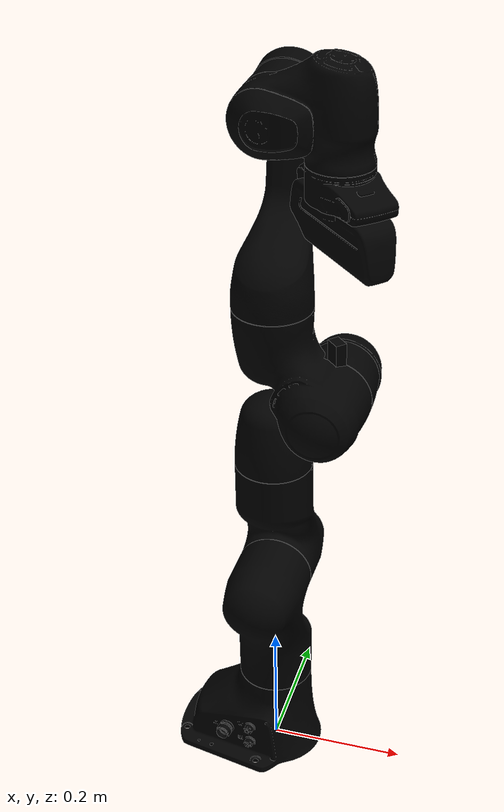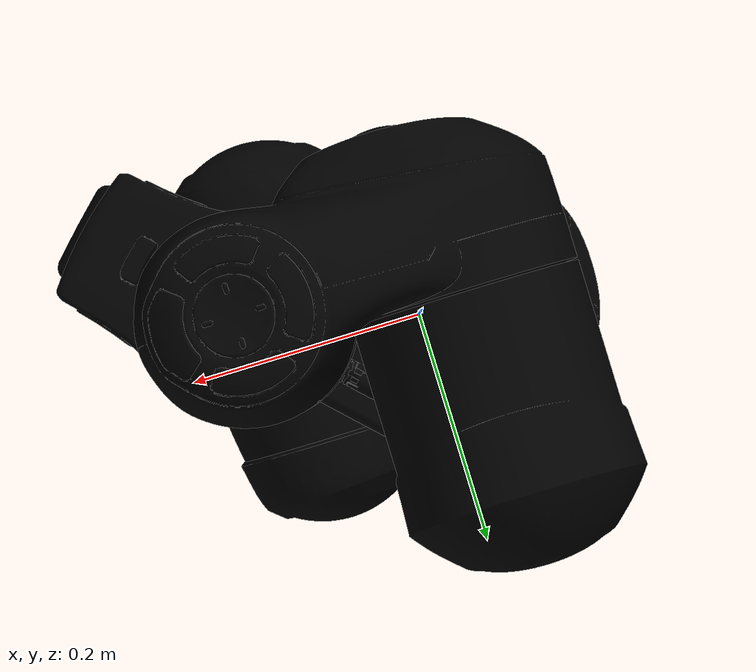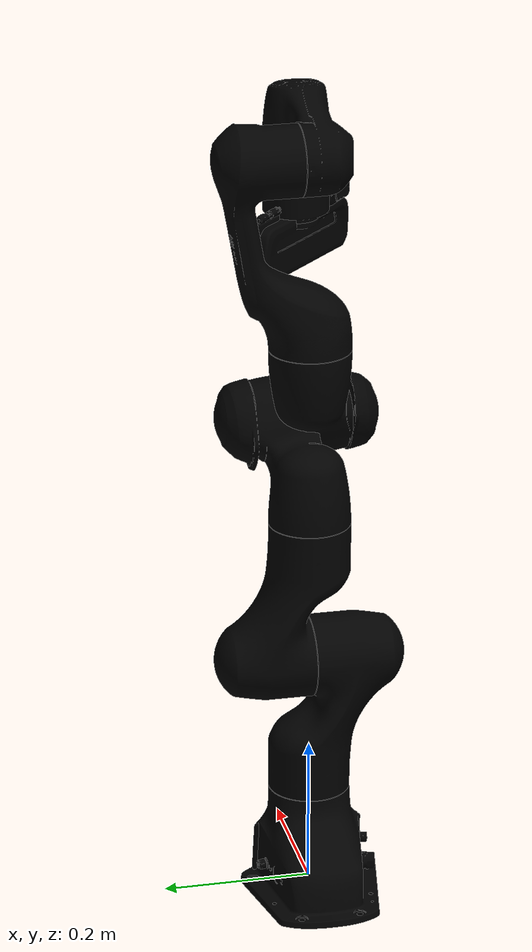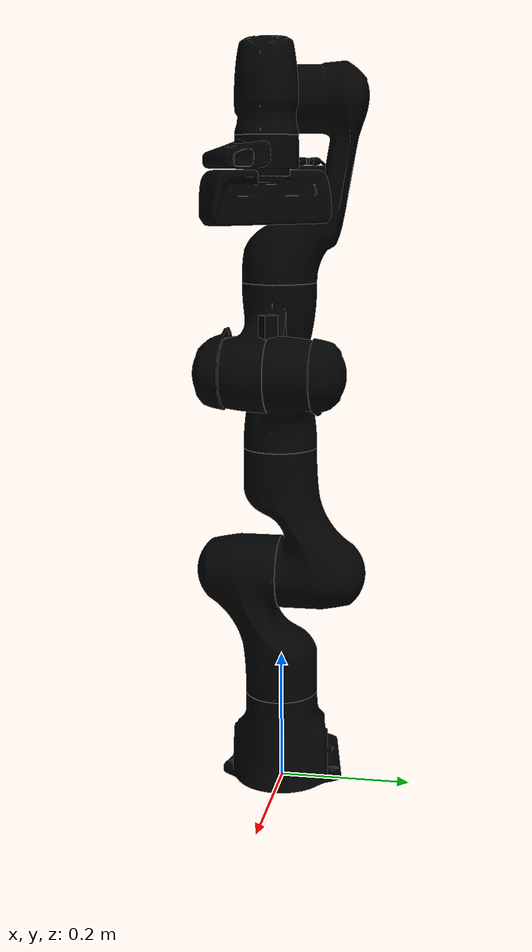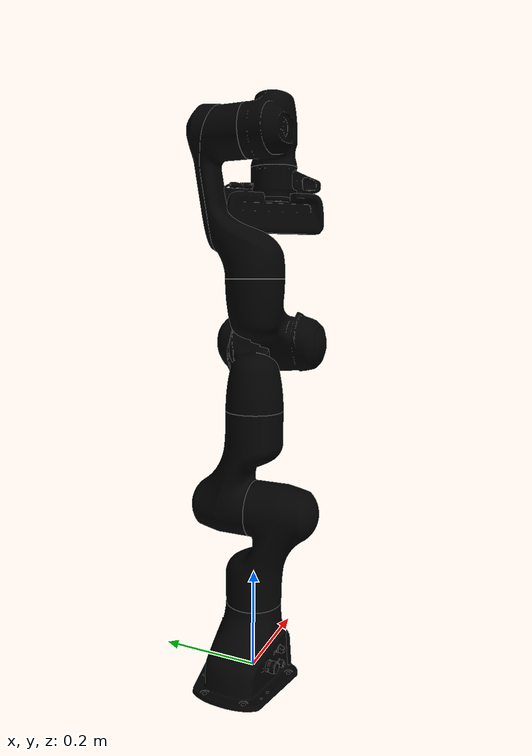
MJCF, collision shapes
<mujoco model="franka_panda_gripper">
  <compiler angle="radian" autolimits="true" inertiafromgeom="true"/>

  <default>
    <default class="visual">
      <geom type="mesh" contype="0" conaffinity="0" density="0" group="1" rgba="0.75 0.75 0.75 1"/>
    </default>
    <default class="collision">
      <geom group="3" rgba="0 0 0 0"/>
    </default>
  </default>

  <asset>
    <mesh name="link0_visual" file="../meshes/visual/link0.obj"/>
    <mesh name="link1_visual" file="../meshes/visual/link1.obj"/>
    <mesh name="link2_visual" file="../meshes/visual/link2.obj"/>
    <mesh name="link3_visual" file="../meshes/visual/link3.obj"/>
    <mesh name="link4_visual" file="../meshes/visual/link4.obj"/>
    <mesh name="link5_visual" file="../meshes/visual/link5.obj"/>
    <mesh name="link6_visual" file="../meshes/visual/link6.obj"/>
    <mesh name="link7_visual" file="../meshes/visual/link7.obj"/>
    <mesh name="hand_visual" file="../meshes/visual/hand.obj"/>

    <mesh name="link0_collision" file="../../../urdf/franka_description/meshes/collision/link0.obj"/>
    <mesh name="link1_collision" file="../../../urdf/franka_description/meshes/collision/link1.obj"/>
    <mesh name="link2_collision" file="../../../urdf/franka_description/meshes/collision/link2.obj"/>
    <mesh name="link3_collision" file="../../../urdf/franka_description/meshes/collision/link3.obj"/>
    <mesh name="link4_collision" file="../../../urdf/franka_description/meshes/collision/link4.obj"/>
    <mesh name="link5_collision" file="../../../urdf/franka_description/meshes/collision/link5.obj"/>
    <mesh name="link6_collision" file="../../../urdf/franka_description/meshes/collision/link6.obj"/>
    <mesh name="link7_collision" file="../../../urdf/franka_description/meshes/collision/link7.obj"/>
    <mesh name="hand_collision" file="../../../urdf/franka_description/meshes/collision/hand.obj"/>
    <mesh name="soft_gripper_finger" file="../../../umi/soft_gripper_finger.stl"/>
  </asset>

  <worldbody>
    <light
      name="key_light"
      pos="-0.2 -0.2 1.6"
      dir="0 0 -1"
      directional="true"
      diffuse="0.85 0.85 0.85"
      specular="0.25 0.25 0.25"
      ambient="0.15 0.15 0.15"
      castshadow="false"
    />
    <body name="panda_link0">
      <geom name="panda_link0_visual" class="visual" mesh="link0_visual"/>
      <geom name="panda_link0_collision" class="collision" mesh="link0_collision"/>

      <body name="panda_link1" pos="0 0 0.333">
        <joint name="panda_joint1" axis="0 0 1" range="-2.8973 2.8973" actuatorfrcrange="-87 87" damping="10"/>
        <geom name="panda_link1_visual" class="visual" mesh="link1_visual"/>
        <geom name="panda_link1_collision" class="collision" mesh="link1_collision"/>

        <body name="panda_link2" quat="0.707107 -0.707107 0 0">
          <joint name="panda_joint2" axis="0 0 1" range="-1.7628 1.7628" actuatorfrcrange="-87 87" damping="10"/>
          <geom name="panda_link2_visual" class="visual" mesh="link2_visual"/>
          <geom name="panda_link2_collision" class="collision" mesh="link2_collision"/>

          <body name="panda_link3" pos="0 -0.316 0" quat="0.707107 0.707107 0 0">
            <joint name="panda_joint3" axis="0 0 1" range="-2.8973 2.8973" actuatorfrcrange="-87 87" damping="10"/>
            <geom name="panda_link3_visual" class="visual" mesh="link3_visual"/>
            <geom name="panda_link3_collision" class="collision" mesh="link3_collision"/>

            <body name="panda_link4" pos="0.0825 0 0" quat="0.707107 0.707107 0 0">
              <joint name="panda_joint4" axis="0 0 1" range="-3.0718 -0.0698" actuatorfrcrange="-87 87" damping="10"/>
              <geom name="panda_link4_visual" class="visual" mesh="link4_visual"/>
              <geom name="panda_link4_collision" class="collision" mesh="link4_collision"/>

              <body name="panda_link5" pos="-0.0825 0.384 0" quat="0.707107 -0.707107 0 0">
                <joint name="panda_joint5" axis="0 0 1" range="-2.8973 2.8973" actuatorfrcrange="-12 12" damping="10"/>
                <geom name="panda_link5_visual" class="visual" mesh="link5_visual"/>
                <geom name="panda_link5_collision" class="collision" mesh="link5_collision"/>

                <body name="panda_link6" quat="0.707107 0.707107 0 0">
                  <joint name="panda_joint6" axis="0 0 1" range="-0.0175 3.7525" actuatorfrcrange="-12 12" damping="10"/>
                  <geom name="panda_link6_visual" class="visual" mesh="link6_visual"/>
                  <geom name="panda_link6_collision" class="collision" mesh="link6_collision"/>

                  <body name="panda_link7" pos="0.088 0 0" quat="0.707107 0.707107 0 0">
                    <joint name="panda_joint7" axis="0 0 1" range="-2.8973 2.8973" actuatorfrcrange="-12 12" damping="10"/>
                    <geom name="panda_link7_visual" class="visual" mesh="link7_visual"/>
                    <geom name="panda_link7_collision" class="collision" mesh="link7_collision"/>

                    <body name="panda_hand" pos="0 0 0.107" quat="0.92388 0 0 -0.382683">
                      <geom name="panda_hand_visual" class="visual" mesh="hand_visual"/>
                      <geom name="panda_hand_collision" class="collision" mesh="hand_collision"/>

                      <body name="panda_hand_y_axis" pos="0 0.01 0"/>
                      <body name="panda_hand_z_axis" pos="0 0 0.01"/>
                      <body name="camera_link" pos="0.03 0 0.0587" quat="0 1 0 0">
                        <camera name="wrist_camera" fovy="60" quat="0.707107 0 0 -0.707107"/>
                      </body>
                      <site name="panda_grip_site" pos="0 0 0.2" size="0.0001" rgba="0 0 0 0"/>

                      <body name="panda_leftfinger" pos="0 0 0.0584">
                        <joint
                          name="panda_finger_joint1"
                          type="slide"
                          axis="0 1 0"
                          range="0 0.04"
                          actuatorfrcrange="-60 60"
                          damping="10"
                        />
                        <geom
                          name="panda_leftfinger_visual"
                          class="visual"
                          mesh="soft_gripper_finger"
                          pos="0.01315 0 0.0265"
                          quat="0 0.707107 0.707107 0"
                          rgba="0.95 0.45 0.08 1"
                        />
                        <geom
                          name="panda_leftfinger_collision"
                          class="collision"
                          type="box"
                          pos="0 0 0.1516"
                          size="0.008 0.011 0.018"
                          condim="3"
                          friction="2.0 0.05 0.02"
                        />
                      </body>

                      <body name="panda_rightfinger" pos="0 0 0.0584">
                        <joint
                          name="panda_finger_joint2"
                          type="slide"
                          axis="0 -1 0"
                          range="0 0.04"
                          actuatorfrcrange="-60 60"
                          damping="10"
                        />
                        <geom
                          name="panda_rightfinger_visual"
                          class="visual"
                          mesh="soft_gripper_finger"
                          pos="-0.01315 0 0.0265"
                          quat="0 -0.707107 0.707107 0"
                          rgba="0.95 0.45 0.08 1"
                        />
                        <geom
                          name="panda_rightfinger_collision"
                          class="collision"
                          type="box"
                          pos="0 0 0.1516"
                          size="0.008 0.011 0.018"
                          condim="3"
                          friction="2.0 0.05 0.02"
                        />
                      </body>
                    </body>
                  </body>
                </body>
              </body>
            </body>
          </body>
        </body>
      </body>
    </body>
  </worldbody>

  <equality>
    <joint
      name="panda_finger_coupling"
      joint1="panda_finger_joint2"
      joint2="panda_finger_joint1"
      polycoef="0 1 0 0 0"
      solref="0.001 2"
      solimp="0.99 0.999 0.001"
    />
  </equality>
</mujoco>
